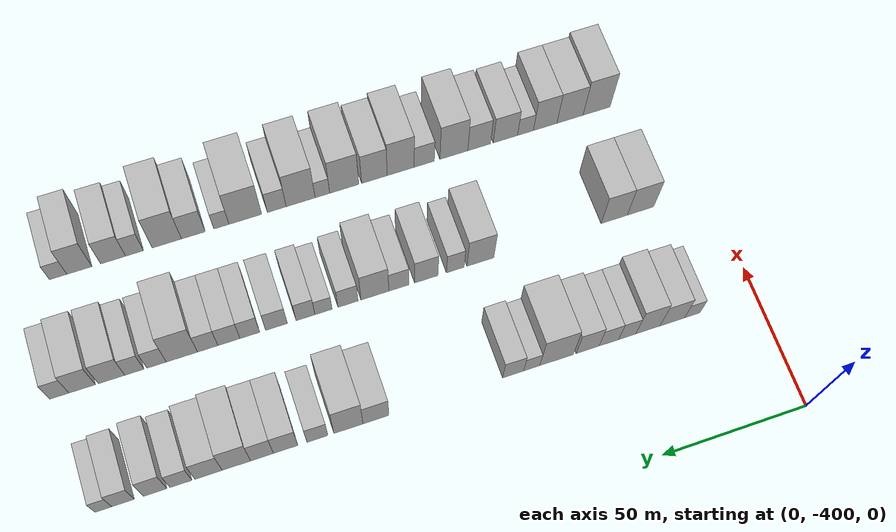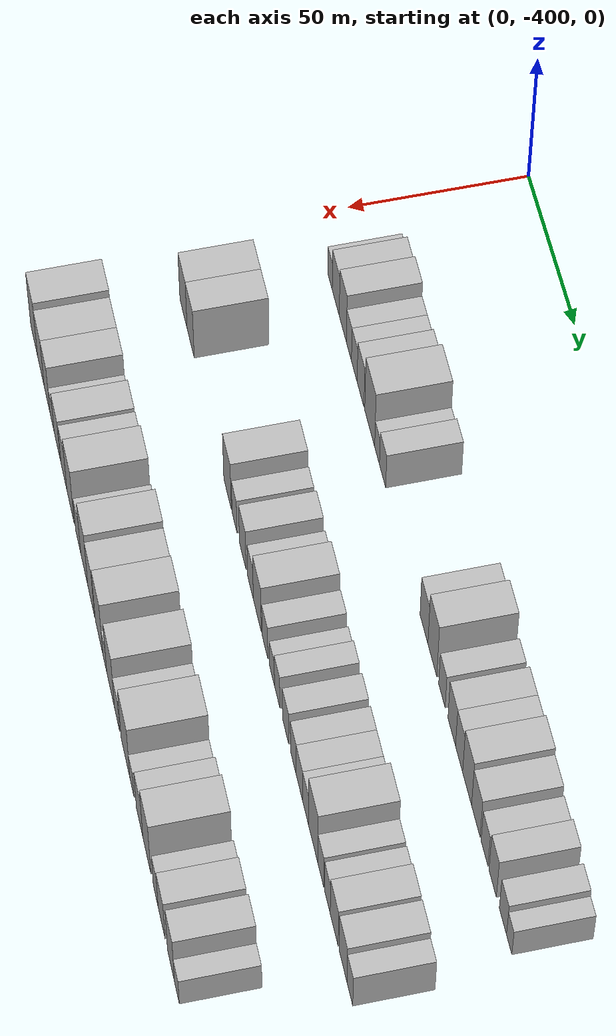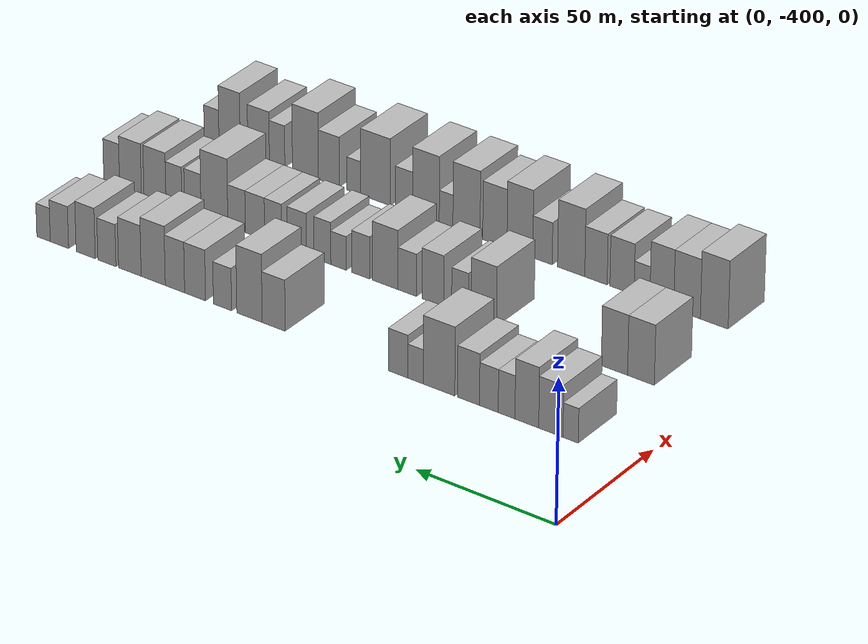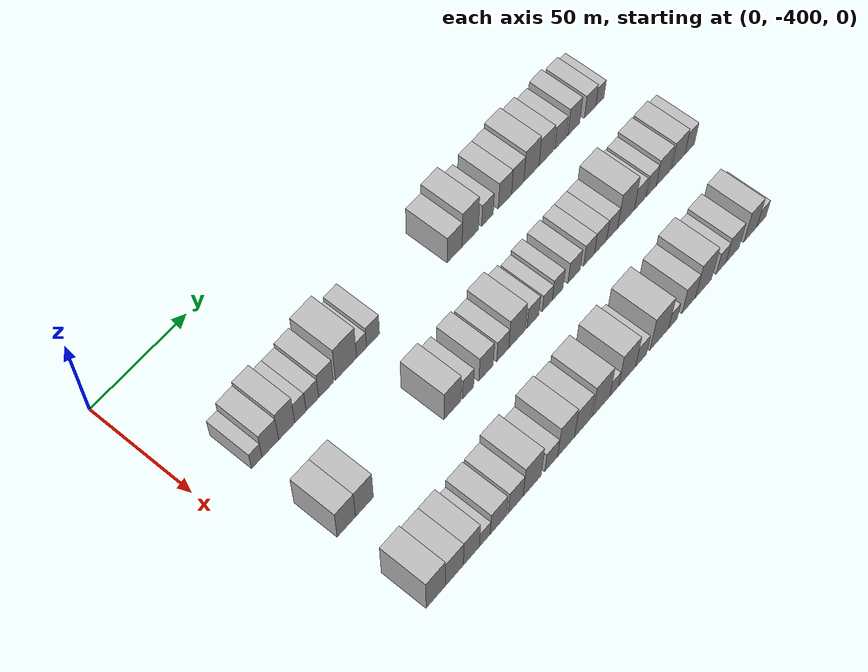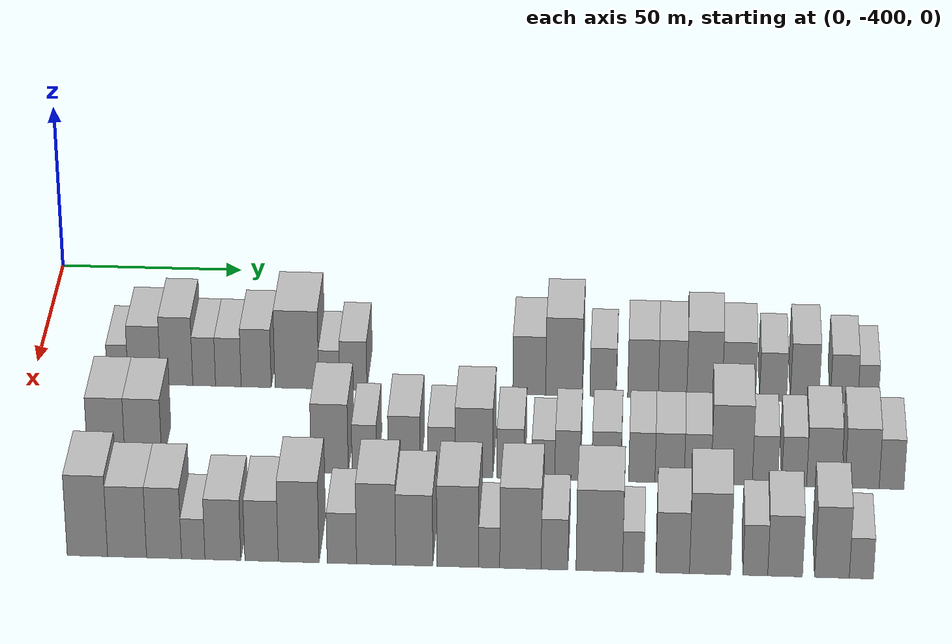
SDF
<sdf version="1.6">
 <world name="default">
  <model name="building_1">
   <static>1</static>
   <pose>50.0000 -377.2303 0 0.000000 0.000000 0.000000</pose>
   <link name="link">
    <pose>0 0 6.00 0 0 0</pose>
    <collision name="collision"><geometry><box><size>20.0000 5.5395 12.0000</size></box></geometry></collision>
    <visual name="visual">
     <cast_shadows>0</cast_shadows>
     <geometry><box><size>20.0000 5.5395 12.0000</size></box></geometry>
     <material>
      <script>
       <uri>model://HANNAS_wall/materials/scripts</uri>
       <uri>model://HANNAS_wall/materials/textures</uri>
       <name>vrc/HANNAS_wall</name>
      </script>
     </material>
    </visual>
   </link>
  </model>
  <model name="building_2">
   <static>1</static>
   <pose>50.0000 -370.1167 0 0.000000 0.000000 0.000000</pose>
   <link name="link">
    <pose>0 0 9.00 0 0 0</pose>
    <collision name="collision"><geometry><box><size>20.0000 8.6876 18.0000</size></box></geometry></collision>
    <visual name="visual">
     <cast_shadows>0</cast_shadows>
     <geometry><box><size>20.0000 8.6876 18.0000</size></box></geometry>
     <material>
      <script>
       <uri>model://HANNAS_wall/materials/scripts</uri>
       <uri>model://HANNAS_wall/materials/textures</uri>
       <name>vrc/HANNAS_wall</name>
      </script>
     </material>
    </visual>
   </link>
  </model>
  <model name="building_3">
   <static>1</static>
   <pose>50.0000 -361.4806 0 0.000000 0.000000 0.000000</pose>
   <link name="link">
    <pose>0 0 10.50 0 0 0</pose>
    <collision name="collision"><geometry><box><size>20.0000 8.5846 21.0000</size></box></geometry></collision>
    <visual name="visual">
     <cast_shadows>0</cast_shadows>
     <geometry><box><size>20.0000 8.5846 21.0000</size></box></geometry>
     <material>
      <script>
       <uri>model://HANNAS_wall/materials/scripts</uri>
       <uri>model://HANNAS_wall/materials/textures</uri>
       <name>vrc/HANNAS_wall</name>
      </script>
     </material>
    </visual>
   </link>
  </model>
  <model name="building_4">
   <static>1</static>
   <pose>50.0000 -354.1550 0 0.000000 0.000000 0.000000</pose>
   <link name="link">
    <pose>0 0 7.50 0 0 0</pose>
    <collision name="collision"><geometry><box><size>20.0000 6.0665 15.0000</size></box></geometry></collision>
    <visual name="visual">
     <cast_shadows>0</cast_shadows>
     <geometry><box><size>20.0000 6.0665 15.0000</size></box></geometry>
     <material>
      <script>
       <uri>model://HANNAS_wall/materials/scripts</uri>
       <uri>model://HANNAS_wall/materials/textures</uri>
       <name>vrc/HANNAS_wall</name>
      </script>
     </material>
    </visual>
   </link>
  </model>
  <model name="building_5">
   <static>1</static>
   <pose>50.0000 -347.7063 0 0.000000 0.000000 0.000000</pose>
   <link name="link">
    <pose>0 0 7.50 0 0 0</pose>
    <collision name="collision"><geometry><box><size>20.0000 6.8309 15.0000</size></box></geometry></collision>
    <visual name="visual">
     <cast_shadows>0</cast_shadows>
     <geometry><box><size>20.0000 6.8309 15.0000</size></box></geometry>
     <material>
      <script>
       <uri>model://HANNAS_wall/materials/scripts</uri>
       <uri>model://HANNAS_wall/materials/textures</uri>
       <name>vrc/HANNAS_wall</name>
      </script>
     </material>
    </visual>
   </link>
  </model>
  <model name="building_6">
   <static>1</static>
   <pose>50.0000 -340.2723 0 0.000000 0.000000 0.000000</pose>
   <link name="link">
    <pose>0 0 9.00 0 0 0</pose>
    <collision name="collision"><geometry><box><size>20.0000 8.0372 18.0000</size></box></geometry></collision>
    <visual name="visual">
     <cast_shadows>0</cast_shadows>
     <geometry><box><size>20.0000 8.0372 18.0000</size></box></geometry>
     <material>
      <script>
       <uri>model://HANNAS_wall/materials/scripts</uri>
       <uri>model://HANNAS_wall/materials/textures</uri>
       <name>vrc/HANNAS_wall</name>
      </script>
     </material>
    </visual>
   </link>
  </model>
  <model name="building_7">
   <static>1</static>
   <pose>50.0000 -329.4300 0 0.000000 0.000000 0.000000</pose>
   <link name="link">
    <pose>0 0 12.00 0 0 0</pose>
    <collision name="collision"><geometry><box><size>20.0000 11.6474 24.0000</size></box></geometry></collision>
    <visual name="visual">
     <cast_shadows>0</cast_shadows>
     <geometry><box><size>20.0000 11.6474 24.0000</size></box></geometry>
     <material>
      <script>
       <uri>model://HANNAS_wall/materials/scripts</uri>
       <uri>model://HANNAS_wall/materials/textures</uri>
       <name>vrc/HANNAS_wall</name>
      </script>
     </material>
    </visual>
   </link>
  </model>
  <model name="building_8">
   <static>1</static>
   <pose>50.0000 -320.8311 0 0.000000 0.000000 0.000000</pose>
   <link name="link">
    <pose>0 0 6.00 0 0 0</pose>
    <collision name="collision"><geometry><box><size>20.0000 5.5504 12.0000</size></box></geometry></collision>
    <visual name="visual">
     <cast_shadows>0</cast_shadows>
     <geometry><box><size>20.0000 5.5504 12.0000</size></box></geometry>
     <material>
      <script>
       <uri>model://HANNAS_wall/materials/scripts</uri>
       <uri>model://HANNAS_wall/materials/textures</uri>
       <name>vrc/HANNAS_wall</name>
      </script>
     </material>
    </visual>
   </link>
  </model>
  <model name="building_9">
   <static>1</static>
   <pose>50.0000 -314.4221 0 0.000000 0.000000 0.000000</pose>
   <link name="link">
    <pose>0 0 7.50 0 0 0</pose>
    <collision name="collision"><geometry><box><size>20.0000 7.2676 15.0000</size></box></geometry></collision>
    <visual name="visual">
     <cast_shadows>0</cast_shadows>
     <geometry><box><size>20.0000 7.2676 15.0000</size></box></geometry>
     <material>
      <script>
       <uri>model://HANNAS_wall/materials/scripts</uri>
       <uri>model://HANNAS_wall/materials/textures</uri>
       <name>vrc/HANNAS_wall</name>
      </script>
     </material>
    </visual>
   </link>
  </model>
  <model name="building_10">
   <static>1</static>
   <pose>50.0000 -267.6759 0 0.000000 0.000000 0.000000</pose>
   <link name="link">
    <pose>0 0 9.00 0 0 0</pose>
    <collision name="collision"><geometry><box><size>20.0000 8.7416 18.0000</size></box></geometry></collision>
    <visual name="visual">
     <cast_shadows>0</cast_shadows>
     <geometry><box><size>20.0000 8.7416 18.0000</size></box></geometry>
     <material>
      <script>
       <uri>model://HANNAS_wall/materials/scripts</uri>
       <uri>model://HANNAS_wall/materials/textures</uri>
       <name>vrc/HANNAS_wall</name>
      </script>
     </material>
    </visual>
   </link>
  </model>
  <model name="building_11">
   <static>1</static>
   <pose>50.0000 -258.4627 0 0.000000 0.000000 0.000000</pose>
   <link name="link">
    <pose>0 0 12.00 0 0 0</pose>
    <collision name="collision"><geometry><box><size>20.0000 9.6846 24.0000</size></box></geometry></collision>
    <visual name="visual">
     <cast_shadows>0</cast_shadows>
     <geometry><box><size>20.0000 9.6846 24.0000</size></box></geometry>
     <material>
      <script>
       <uri>model://HANNAS_wall/materials/scripts</uri>
       <uri>model://HANNAS_wall/materials/textures</uri>
       <name>vrc/HANNAS_wall</name>
      </script>
     </material>
    </visual>
   </link>
  </model>
  <model name="building_12">
   <static>1</static>
   <pose>50.0000 -248.1297 0 0.000000 0.000000 0.000000</pose>
   <link name="link">
    <pose>0 0 7.50 0 0 0</pose>
    <collision name="collision"><geometry><box><size>20.0000 6.9814 15.0000</size></box></geometry></collision>
    <visual name="visual">
     <cast_shadows>0</cast_shadows>
     <geometry><box><size>20.0000 6.9814 15.0000</size></box></geometry>
     <material>
      <script>
       <uri>model://HANNAS_wall/materials/scripts</uri>
       <uri>model://HANNAS_wall/materials/textures</uri>
       <name>vrc/HANNAS_wall</name>
      </script>
     </material>
    </visual>
   </link>
  </model>
  <model name="building_13">
   <static>1</static>
   <pose>50.0000 -237.5989 0 0.000000 0.000000 0.000000</pose>
   <link name="link">
    <pose>0 0 9.00 0 0 0</pose>
    <collision name="collision"><geometry><box><size>20.0000 8.0801 18.0000</size></box></geometry></collision>
    <visual name="visual">
     <cast_shadows>0</cast_shadows>
     <geometry><box><size>20.0000 8.0801 18.0000</size></box></geometry>
     <material>
      <script>
       <uri>model://HANNAS_wall/materials/scripts</uri>
       <uri>model://HANNAS_wall/materials/textures</uri>
       <name>vrc/HANNAS_wall</name>
      </script>
     </material>
    </visual>
   </link>
  </model>
  <model name="building_14">
   <static>1</static>
   <pose>50.0000 -229.7925 0 0.000000 0.000000 0.000000</pose>
   <link name="link">
    <pose>0 0 9.00 0 0 0</pose>
    <collision name="collision"><geometry><box><size>20.0000 7.5328 18.0000</size></box></geometry></collision>
    <visual name="visual">
     <cast_shadows>0</cast_shadows>
     <geometry><box><size>20.0000 7.5328 18.0000</size></box></geometry>
     <material>
      <script>
       <uri>model://HANNAS_wall/materials/scripts</uri>
       <uri>model://HANNAS_wall/materials/textures</uri>
       <name>vrc/HANNAS_wall</name>
      </script>
     </material>
    </visual>
   </link>
  </model>
  <model name="building_15">
   <static>1</static>
   <pose>50.0000 -221.3531 0 0.000000 0.000000 0.000000</pose>
   <link name="link">
    <pose>0 0 10.50 0 0 0</pose>
    <collision name="collision"><geometry><box><size>20.0000 9.3460 21.0000</size></box></geometry></collision>
    <visual name="visual">
     <cast_shadows>0</cast_shadows>
     <geometry><box><size>20.0000 9.3460 21.0000</size></box></geometry>
     <material>
      <script>
       <uri>model://HANNAS_wall/materials/scripts</uri>
       <uri>model://HANNAS_wall/materials/textures</uri>
       <name>vrc/HANNAS_wall</name>
      </script>
     </material>
    </visual>
   </link>
  </model>
  <model name="building_16">
   <static>1</static>
   <pose>50.0000 -212.2485 0 0.000000 0.000000 0.000000</pose>
   <link name="link">
    <pose>0 0 9.00 0 0 0</pose>
    <collision name="collision"><geometry><box><size>20.0000 8.8632 18.0000</size></box></geometry></collision>
    <visual name="visual">
     <cast_shadows>0</cast_shadows>
     <geometry><box><size>20.0000 8.8632 18.0000</size></box></geometry>
     <material>
      <script>
       <uri>model://HANNAS_wall/materials/scripts</uri>
       <uri>model://HANNAS_wall/materials/textures</uri>
       <name>vrc/HANNAS_wall</name>
      </script>
     </material>
    </visual>
   </link>
  </model>
  <model name="building_17">
   <static>1</static>
   <pose>50.0000 -203.2530 0 0.000000 0.000000 0.000000</pose>
   <link name="link">
    <pose>0 0 7.50 0 0 0</pose>
    <collision name="collision"><geometry><box><size>20.0000 7.1278 15.0000</size></box></geometry></collision>
    <visual name="visual">
     <cast_shadows>0</cast_shadows>
     <geometry><box><size>20.0000 7.1278 15.0000</size></box></geometry>
     <material>
      <script>
       <uri>model://HANNAS_wall/materials/scripts</uri>
       <uri>model://HANNAS_wall/materials/textures</uri>
       <name>vrc/HANNAS_wall</name>
      </script>
     </material>
    </visual>
   </link>
  </model>
  <model name="building_18">
   <static>1</static>
   <pose>50.0000 -194.9167 0 0.000000 0.000000 0.000000</pose>
   <link name="link">
    <pose>0 0 9.00 0 0 0</pose>
    <collision name="collision"><geometry><box><size>20.0000 7.5448 18.0000</size></box></geometry></collision>
    <visual name="visual">
     <cast_shadows>0</cast_shadows>
     <geometry><box><size>20.0000 7.5448 18.0000</size></box></geometry>
     <material>
      <script>
       <uri>model://HANNAS_wall/materials/scripts</uri>
       <uri>model://HANNAS_wall/materials/textures</uri>
       <name>vrc/HANNAS_wall</name>
      </script>
     </material>
    </visual>
   </link>
  </model>
  <model name="building_19">
   <static>1</static>
   <pose>50.0000 -184.5215 0 0.000000 0.000000 0.000000</pose>
   <link name="link">
    <pose>0 0 7.50 0 0 0</pose>
    <collision name="collision"><geometry><box><size>20.0000 7.2455 15.0000</size></box></geometry></collision>
    <visual name="visual">
     <cast_shadows>0</cast_shadows>
     <geometry><box><size>20.0000 7.2455 15.0000</size></box></geometry>
     <material>
      <script>
       <uri>model://HANNAS_wall/materials/scripts</uri>
       <uri>model://HANNAS_wall/materials/textures</uri>
       <name>vrc/HANNAS_wall</name>
      </script>
     </material>
    </visual>
   </link>
  </model>
  <model name="building_20">
   <static>1</static>
   <pose>50.0000 -178.2118 0 0.000000 0.000000 0.000000</pose>
   <link name="link">
    <pose>0 0 6.00 0 0 0</pose>
    <collision name="collision"><geometry><box><size>20.0000 5.3739 12.0000</size></box></geometry></collision>
    <visual name="visual">
     <cast_shadows>0</cast_shadows>
     <geometry><box><size>20.0000 5.3739 12.0000</size></box></geometry>
     <material>
      <script>
       <uri>model://HANNAS_wall/materials/scripts</uri>
       <uri>model://HANNAS_wall/materials/textures</uri>
       <name>vrc/HANNAS_wall</name>
      </script>
     </material>
    </visual>
   </link>
  </model>
  <model name="building_79">
   <static>1</static>
   <pose>90.0000 -375.1652 0 0.000000 0.000000 0.000000</pose>
   <link name="link">
    <pose>0 0 10.50 0 0 0</pose>
    <collision name="collision"><geometry><box><size>20.0000 9.6697 21.0000</size></box></geometry></collision>
    <visual name="visual">
     <cast_shadows>0</cast_shadows>
     <geometry><box><size>20.0000 9.6697 21.0000</size></box></geometry>
     <material>
      <script>
       <uri>model://HANNAS_wall/materials/scripts</uri>
       <uri>model://HANNAS_wall/materials/textures</uri>
       <name>vrc/HANNAS_wall</name>
      </script>
     </material>
    </visual>
   </link>
  </model>
  <model name="building_80">
   <static>1</static>
   <pose>90.0000 -365.5708 0 0.000000 0.000000 0.000000</pose>
   <link name="link">
    <pose>0 0 10.50 0 0 0</pose>
    <collision name="collision"><geometry><box><size>20.0000 9.5191 21.0000</size></box></geometry></collision>
    <visual name="visual">
     <cast_shadows>0</cast_shadows>
     <geometry><box><size>20.0000 9.5191 21.0000</size></box></geometry>
     <material>
      <script>
       <uri>model://HANNAS_wall/materials/scripts</uri>
       <uri>model://HANNAS_wall/materials/textures</uri>
       <name>vrc/HANNAS_wall</name>
      </script>
     </material>
    </visual>
   </link>
  </model>
  <model name="building_81">
   <static>1</static>
   <pose>90.0000 -317.5282 0 0.000000 0.000000 0.000000</pose>
   <link name="link">
    <pose>0 0 10.50 0 0 0</pose>
    <collision name="collision"><geometry><box><size>20.0000 9.5220 21.0000</size></box></geometry></collision>
    <visual name="visual">
     <cast_shadows>0</cast_shadows>
     <geometry><box><size>20.0000 9.5220 21.0000</size></box></geometry>
     <material>
      <script>
       <uri>model://HANNAS_wall/materials/scripts</uri>
       <uri>model://HANNAS_wall/materials/textures</uri>
       <name>vrc/HANNAS_wall</name>
      </script>
     </material>
    </visual>
   </link>
  </model>
  <model name="building_82">
   <static>1</static>
   <pose>90.0000 -308.6237 0 0.000000 0.000000 0.000000</pose>
   <link name="link">
    <pose>0 0 7.50 0 0 0</pose>
    <collision name="collision"><geometry><box><size>20.0000 6.2872 15.0000</size></box></geometry></collision>
    <visual name="visual">
     <cast_shadows>0</cast_shadows>
     <geometry><box><size>20.0000 6.2872 15.0000</size></box></geometry>
     <material>
      <script>
       <uri>model://HANNAS_wall/materials/scripts</uri>
       <uri>model://HANNAS_wall/materials/textures</uri>
       <name>vrc/HANNAS_wall</name>
      </script>
     </material>
    </visual>
   </link>
  </model>
  <model name="building_83">
   <static>1</static>
   <pose>90.0000 -298.3840 0 0.000000 0.000000 0.000000</pose>
   <link name="link">
    <pose>0 0 9.00 0 0 0</pose>
    <collision name="collision"><geometry><box><size>20.0000 8.1922 18.0000</size></box></geometry></collision>
    <visual name="visual">
     <cast_shadows>0</cast_shadows>
     <geometry><box><size>20.0000 8.1922 18.0000</size></box></geometry>
     <material>
      <script>
       <uri>model://HANNAS_wall/materials/scripts</uri>
       <uri>model://HANNAS_wall/materials/textures</uri>
       <name>vrc/HANNAS_wall</name>
      </script>
     </material>
    </visual>
   </link>
  </model>
  <model name="building_84">
   <static>1</static>
   <pose>90.0000 -288.7840 0 0.000000 0.000000 0.000000</pose>
   <link name="link">
    <pose>0 0 7.50 0 0 0</pose>
    <collision name="collision"><geometry><box><size>20.0000 7.0077 15.0000</size></box></geometry></collision>
    <visual name="visual">
     <cast_shadows>0</cast_shadows>
     <geometry><box><size>20.0000 7.0077 15.0000</size></box></geometry>
     <material>
      <script>
       <uri>model://HANNAS_wall/materials/scripts</uri>
       <uri>model://HANNAS_wall/materials/textures</uri>
       <name>vrc/HANNAS_wall</name>
      </script>
     </material>
    </visual>
   </link>
  </model>
  <model name="building_85">
   <static>1</static>
   <pose>90.0000 -280.4297 0 0.000000 0.000000 0.000000</pose>
   <link name="link">
    <pose>0 0 10.50 0 0 0</pose>
    <collision name="collision"><geometry><box><size>20.0000 9.7008 21.0000</size></box></geometry></collision>
    <visual name="visual">
     <cast_shadows>0</cast_shadows>
     <geometry><box><size>20.0000 9.7008 21.0000</size></box></geometry>
     <material>
      <script>
       <uri>model://HANNAS_wall/materials/scripts</uri>
       <uri>model://HANNAS_wall/materials/textures</uri>
       <name>vrc/HANNAS_wall</name>
      </script>
     </material>
    </visual>
   </link>
  </model>
  <model name="building_86">
   <static>1</static>
   <pose>90.0000 -271.0940 0 0.000000 0.000000 0.000000</pose>
   <link name="link">
    <pose>0 0 7.50 0 0 0</pose>
    <collision name="collision"><geometry><box><size>20.0000 6.9707 15.0000</size></box></geometry></collision>
    <visual name="visual">
     <cast_shadows>0</cast_shadows>
     <geometry><box><size>20.0000 6.9707 15.0000</size></box></geometry>
     <material>
      <script>
       <uri>model://HANNAS_wall/materials/scripts</uri>
       <uri>model://HANNAS_wall/materials/textures</uri>
       <name>vrc/HANNAS_wall</name>
      </script>
     </material>
    </visual>
   </link>
  </model>
  <model name="building_87">
   <static>1</static>
   <pose>90.0000 -262.6356 0 0.000000 0.000000 0.000000</pose>
   <link name="link">
    <pose>0 0 6.00 0 0 0</pose>
    <collision name="collision"><geometry><box><size>20.0000 5.9460 12.0000</size></box></geometry></collision>
    <visual name="visual">
     <cast_shadows>0</cast_shadows>
     <geometry><box><size>20.0000 5.9460 12.0000</size></box></geometry>
     <material>
      <script>
       <uri>model://HANNAS_wall/materials/scripts</uri>
       <uri>model://HANNAS_wall/materials/textures</uri>
       <name>vrc/HANNAS_wall</name>
      </script>
     </material>
    </visual>
   </link>
  </model>
  <model name="building_88">
   <static>1</static>
   <pose>90.0000 -256.4345 0 0.000000 0.000000 0.000000</pose>
   <link name="link">
    <pose>0 0 7.50 0 0 0</pose>
    <collision name="collision"><geometry><box><size>20.0000 6.4562 15.0000</size></box></geometry></collision>
    <visual name="visual">
     <cast_shadows>0</cast_shadows>
     <geometry><box><size>20.0000 6.4562 15.0000</size></box></geometry>
     <material>
      <script>
       <uri>model://HANNAS_wall/materials/scripts</uri>
       <uri>model://HANNAS_wall/materials/textures</uri>
       <name>vrc/HANNAS_wall</name>
      </script>
     </material>
    </visual>
   </link>
  </model>
  <model name="building_89">
   <static>1</static>
   <pose>90.0000 -246.4819 0 0.000000 0.000000 0.000000</pose>
   <link name="link">
    <pose>0 0 7.50 0 0 0</pose>
    <collision name="collision"><geometry><box><size>20.0000 7.4492 15.0000</size></box></geometry></collision>
    <visual name="visual">
     <cast_shadows>0</cast_shadows>
     <geometry><box><size>20.0000 7.4492 15.0000</size></box></geometry>
     <material>
      <script>
       <uri>model://HANNAS_wall/materials/scripts</uri>
       <uri>model://HANNAS_wall/materials/textures</uri>
       <name>vrc/HANNAS_wall</name>
      </script>
     </material>
    </visual>
   </link>
  </model>
  <model name="building_90">
   <static>1</static>
   <pose>90.0000 -237.4047 0 0.000000 0.000000 0.000000</pose>
   <link name="link">
    <pose>0 0 7.50 0 0 0</pose>
    <collision name="collision"><geometry><box><size>20.0000 6.7051 15.0000</size></box></geometry></collision>
    <visual name="visual">
     <cast_shadows>0</cast_shadows>
     <geometry><box><size>20.0000 6.7051 15.0000</size></box></geometry>
     <material>
      <script>
       <uri>model://HANNAS_wall/materials/scripts</uri>
       <uri>model://HANNAS_wall/materials/textures</uri>
       <name>vrc/HANNAS_wall</name>
      </script>
     </material>
    </visual>
   </link>
  </model>
  <model name="building_91">
   <static>1</static>
   <pose>90.0000 -230.3034 0 0.000000 0.000000 0.000000</pose>
   <link name="link">
    <pose>0 0 7.50 0 0 0</pose>
    <collision name="collision"><geometry><box><size>20.0000 7.4975 15.0000</size></box></geometry></collision>
    <visual name="visual">
     <cast_shadows>0</cast_shadows>
     <geometry><box><size>20.0000 7.4975 15.0000</size></box></geometry>
     <material>
      <script>
       <uri>model://HANNAS_wall/materials/scripts</uri>
       <uri>model://HANNAS_wall/materials/textures</uri>
       <name>vrc/HANNAS_wall</name>
      </script>
     </material>
    </visual>
   </link>
  </model>
  <model name="building_92">
   <static>1</static>
   <pose>90.0000 -223.1185 0 0.000000 0.000000 0.000000</pose>
   <link name="link">
    <pose>0 0 7.50 0 0 0</pose>
    <collision name="collision"><geometry><box><size>20.0000 6.8724 15.0000</size></box></geometry></collision>
    <visual name="visual">
     <cast_shadows>0</cast_shadows>
     <geometry><box><size>20.0000 6.8724 15.0000</size></box></geometry>
     <material>
      <script>
       <uri>model://HANNAS_wall/materials/scripts</uri>
       <uri>model://HANNAS_wall/materials/textures</uri>
       <name>vrc/HANNAS_wall</name>
      </script>
     </material>
    </visual>
   </link>
  </model>
  <model name="building_93">
   <static>1</static>
   <pose>90.0000 -214.4165 0 0.000000 0.000000 0.000000</pose>
   <link name="link">
    <pose>0 0 12.00 0 0 0</pose>
    <collision name="collision"><geometry><box><size>20.0000 10.5315 24.0000</size></box></geometry></collision>
    <visual name="visual">
     <cast_shadows>0</cast_shadows>
     <geometry><box><size>20.0000 10.5315 24.0000</size></box></geometry>
     <material>
      <script>
       <uri>model://HANNAS_wall/materials/scripts</uri>
       <uri>model://HANNAS_wall/materials/textures</uri>
       <name>vrc/HANNAS_wall</name>
      </script>
     </material>
    </visual>
   </link>
  </model>
  <model name="building_94">
   <static>1</static>
   <pose>90.0000 -205.8955 0 0.000000 0.000000 0.000000</pose>
   <link name="link">
    <pose>0 0 7.50 0 0 0</pose>
    <collision name="collision"><geometry><box><size>20.0000 6.5105 15.0000</size></box></geometry></collision>
    <visual name="visual">
     <cast_shadows>0</cast_shadows>
     <geometry><box><size>20.0000 6.5105 15.0000</size></box></geometry>
     <material>
      <script>
       <uri>model://HANNAS_wall/materials/scripts</uri>
       <uri>model://HANNAS_wall/materials/textures</uri>
       <name>vrc/HANNAS_wall</name>
      </script>
     </material>
    </visual>
   </link>
  </model>
  <model name="building_95">
   <static>1</static>
   <pose>90.0000 -198.4619 0 0.000000 0.000000 0.000000</pose>
   <link name="link">
    <pose>0 0 7.50 0 0 0</pose>
    <collision name="collision"><geometry><box><size>20.0000 6.3567 15.0000</size></box></geometry></collision>
    <visual name="visual">
     <cast_shadows>0</cast_shadows>
     <geometry><box><size>20.0000 6.3567 15.0000</size></box></geometry>
     <material>
      <script>
       <uri>model://HANNAS_wall/materials/scripts</uri>
       <uri>model://HANNAS_wall/materials/textures</uri>
       <name>vrc/HANNAS_wall</name>
      </script>
     </material>
    </visual>
   </link>
  </model>
  <model name="building_96">
   <static>1</static>
   <pose>90.0000 -190.8978 0 0.000000 0.000000 0.000000</pose>
   <link name="link">
    <pose>0 0 9.00 0 0 0</pose>
    <collision name="collision"><geometry><box><size>20.0000 8.7715 18.0000</size></box></geometry></collision>
    <visual name="visual">
     <cast_shadows>0</cast_shadows>
     <geometry><box><size>20.0000 8.7715 18.0000</size></box></geometry>
     <material>
      <script>
       <uri>model://HANNAS_wall/materials/scripts</uri>
       <uri>model://HANNAS_wall/materials/textures</uri>
       <name>vrc/HANNAS_wall</name>
      </script>
     </material>
    </visual>
   </link>
  </model>
  <model name="building_97">
   <static>1</static>
   <pose>90.0000 -181.1439 0 0.000000 0.000000 0.000000</pose>
   <link name="link">
    <pose>0 0 9.00 0 0 0</pose>
    <collision name="collision"><geometry><box><size>20.0000 8.7362 18.0000</size></box></geometry></collision>
    <visual name="visual">
     <cast_shadows>0</cast_shadows>
     <geometry><box><size>20.0000 8.7362 18.0000</size></box></geometry>
     <material>
      <script>
       <uri>model://HANNAS_wall/materials/scripts</uri>
       <uri>model://HANNAS_wall/materials/textures</uri>
       <name>vrc/HANNAS_wall</name>
      </script>
     </material>
    </visual>
   </link>
  </model>
  <model name="building_98">
   <static>1</static>
   <pose>90.0000 -173.6215 0 0.000000 0.000000 0.000000</pose>
   <link name="link">
    <pose>0 0 7.50 0 0 0</pose>
    <collision name="collision"><geometry><box><size>20.0000 6.3087 15.0000</size></box></geometry></collision>
    <visual name="visual">
     <cast_shadows>0</cast_shadows>
     <geometry><box><size>20.0000 6.3087 15.0000</size></box></geometry>
     <material>
      <script>
       <uri>model://HANNAS_wall/materials/scripts</uri>
       <uri>model://HANNAS_wall/materials/textures</uri>
       <name>vrc/HANNAS_wall</name>
      </script>
     </material>
    </visual>
   </link>
  </model>
  <model name="building_159">
   <static>1</static>
   <pose>130.0000 -374.9389 0 0.000000 0.000000 0.000000</pose>
   <link name="link">
    <pose>0 0 12.00 0 0 0</pose>
    <collision name="collision"><geometry><box><size>20.0000 10.1222 24.0000</size></box></geometry></collision>
    <visual name="visual">
     <cast_shadows>0</cast_shadows>
     <geometry><box><size>20.0000 10.1222 24.0000</size></box></geometry>
     <material>
      <script>
       <uri>model://HANNAS_wall/materials/scripts</uri>
       <uri>model://HANNAS_wall/materials/textures</uri>
       <name>vrc/HANNAS_wall</name>
      </script>
     </material>
    </visual>
   </link>
  </model>
  <model name="building_160">
   <static>1</static>
   <pose>130.0000 -365.0108 0 0.000000 0.000000 0.000000</pose>
   <link name="link">
    <pose>0 0 10.50 0 0 0</pose>
    <collision name="collision"><geometry><box><size>20.0000 9.7339 21.0000</size></box></geometry></collision>
    <visual name="visual">
     <cast_shadows>0</cast_shadows>
     <geometry><box><size>20.0000 9.7339 21.0000</size></box></geometry>
     <material>
      <script>
       <uri>model://HANNAS_wall/materials/scripts</uri>
       <uri>model://HANNAS_wall/materials/textures</uri>
       <name>vrc/HANNAS_wall</name>
      </script>
     </material>
    </visual>
   </link>
  </model>
  <model name="building_161">
   <static>1</static>
   <pose>130.0000 -355.7655 0 0.000000 0.000000 0.000000</pose>
   <link name="link">
    <pose>0 0 10.50 0 0 0</pose>
    <collision name="collision"><geometry><box><size>20.0000 8.7567 21.0000</size></box></geometry></collision>
    <visual name="visual">
     <cast_shadows>0</cast_shadows>
     <geometry><box><size>20.0000 8.7567 21.0000</size></box></geometry>
     <material>
      <script>
       <uri>model://HANNAS_wall/materials/scripts</uri>
       <uri>model://HANNAS_wall/materials/textures</uri>
       <name>vrc/HANNAS_wall</name>
      </script>
     </material>
    </visual>
   </link>
  </model>
  <model name="building_162">
   <static>1</static>
   <pose>130.0000 -348.4576 0 0.000000 0.000000 0.000000</pose>
   <link name="link">
    <pose>0 0 6.00 0 0 0</pose>
    <collision name="collision"><geometry><box><size>20.0000 5.8590 12.0000</size></box></geometry></collision>
    <visual name="visual">
     <cast_shadows>0</cast_shadows>
     <geometry><box><size>20.0000 5.8590 12.0000</size></box></geometry>
     <material>
      <script>
       <uri>model://HANNAS_wall/materials/scripts</uri>
       <uri>model://HANNAS_wall/materials/textures</uri>
       <name>vrc/HANNAS_wall</name>
      </script>
     </material>
    </visual>
   </link>
  </model>
  <model name="building_163">
   <static>1</static>
   <pose>130.0000 -341.0504 0 0.000000 0.000000 0.000000</pose>
   <link name="link">
    <pose>0 0 9.00 0 0 0</pose>
    <collision name="collision"><geometry><box><size>20.0000 8.9554 18.0000</size></box></geometry></collision>
    <visual name="visual">
     <cast_shadows>0</cast_shadows>
     <geometry><box><size>20.0000 8.9554 18.0000</size></box></geometry>
     <material>
      <script>
       <uri>model://HANNAS_wall/materials/scripts</uri>
       <uri>model://HANNAS_wall/materials/textures</uri>
       <name>vrc/HANNAS_wall</name>
      </script>
     </material>
    </visual>
   </link>
  </model>
  <model name="building_164">
   <static>1</static>
   <pose>130.0000 -331.3988 0 0.000000 0.000000 0.000000</pose>
   <link name="link">
    <pose>0 0 9.00 0 0 0</pose>
    <collision name="collision"><geometry><box><size>20.0000 8.3478 18.0000</size></box></geometry></collision>
    <visual name="visual">
     <cast_shadows>0</cast_shadows>
     <geometry><box><size>20.0000 8.3478 18.0000</size></box></geometry>
     <material>
      <script>
       <uri>model://HANNAS_wall/materials/scripts</uri>
       <uri>model://HANNAS_wall/materials/textures</uri>
       <name>vrc/HANNAS_wall</name>
      </script>
     </material>
    </visual>
   </link>
  </model>
  <model name="building_165">
   <static>1</static>
   <pose>130.0000 -322.1308 0 0.000000 0.000000 0.000000</pose>
   <link name="link">
    <pose>0 0 12.00 0 0 0</pose>
    <collision name="collision"><geometry><box><size>20.0000 10.1881 24.0000</size></box></geometry></collision>
    <visual name="visual">
     <cast_shadows>0</cast_shadows>
     <geometry><box><size>20.0000 10.1881 24.0000</size></box></geometry>
     <material>
      <script>
       <uri>model://HANNAS_wall/materials/scripts</uri>
       <uri>model://HANNAS_wall/materials/textures</uri>
       <name>vrc/HANNAS_wall</name>
      </script>
     </material>
    </visual>
   </link>
  </model>
  <model name="building_166">
   <static>1</static>
   <pose>130.0000 -311.3812 0 0.000000 0.000000 0.000000</pose>
   <link name="link">
    <pose>0 0 7.50 0 0 0</pose>
    <collision name="collision"><geometry><box><size>20.0000 7.3112 15.0000</size></box></geometry></collision>
    <visual name="visual">
     <cast_shadows>0</cast_shadows>
     <geometry><box><size>20.0000 7.3112 15.0000</size></box></geometry>
     <material>
      <script>
       <uri>model://HANNAS_wall/materials/scripts</uri>
       <uri>model://HANNAS_wall/materials/textures</uri>
       <name>vrc/HANNAS_wall</name>
      </script>
     </material>
    </visual>
   </link>
  </model>
  <model name="building_167">
   <static>1</static>
   <pose>130.0000 -302.8460 0 0.000000 0.000000 0.000000</pose>
   <link name="link">
    <pose>0 0 12.00 0 0 0</pose>
    <collision name="collision"><geometry><box><size>20.0000 9.7593 24.0000</size></box></geometry></collision>
    <visual name="visual">
     <cast_shadows>0</cast_shadows>
     <geometry><box><size>20.0000 9.7593 24.0000</size></box></geometry>
     <material>
      <script>
       <uri>model://HANNAS_wall/materials/scripts</uri>
       <uri>model://HANNAS_wall/materials/textures</uri>
       <name>vrc/HANNAS_wall</name>
      </script>
     </material>
    </visual>
   </link>
  </model>
  <model name="building_168">
   <static>1</static>
   <pose>130.0000 -293.3575 0 0.000000 0.000000 0.000000</pose>
   <link name="link">
    <pose>0 0 10.50 0 0 0</pose>
    <collision name="collision"><geometry><box><size>20.0000 9.2177 21.0000</size></box></geometry></collision>
    <visual name="visual">
     <cast_shadows>0</cast_shadows>
     <geometry><box><size>20.0000 9.2177 21.0000</size></box></geometry>
     <material>
      <script>
       <uri>model://HANNAS_wall/materials/scripts</uri>
       <uri>model://HANNAS_wall/materials/textures</uri>
       <name>vrc/HANNAS_wall</name>
      </script>
     </material>
    </visual>
   </link>
  </model>
  <model name="building_169">
   <static>1</static>
   <pose>130.0000 -282.5493 0 0.000000 0.000000 0.000000</pose>
   <link name="link">
    <pose>0 0 12.00 0 0 0</pose>
    <collision name="collision"><geometry><box><size>20.0000 10.3986 24.0000</size></box></geometry></collision>
    <visual name="visual">
     <cast_shadows>0</cast_shadows>
     <geometry><box><size>20.0000 10.3986 24.0000</size></box></geometry>
     <material>
      <script>
       <uri>model://HANNAS_wall/materials/scripts</uri>
       <uri>model://HANNAS_wall/materials/textures</uri>
       <name>vrc/HANNAS_wall</name>
      </script>
     </material>
    </visual>
   </link>
  </model>
  <model name="building_170">
   <static>1</static>
   <pose>130.0000 -274.7275 0 0.000000 0.000000 0.000000</pose>
   <link name="link">
    <pose>0 0 6.00 0 0 0</pose>
    <collision name="collision"><geometry><box><size>20.0000 5.2450 12.0000</size></box></geometry></collision>
    <visual name="visual">
     <cast_shadows>0</cast_shadows>
     <geometry><box><size>20.0000 5.2450 12.0000</size></box></geometry>
     <material>
      <script>
       <uri>model://HANNAS_wall/materials/scripts</uri>
       <uri>model://HANNAS_wall/materials/textures</uri>
       <name>vrc/HANNAS_wall</name>
      </script>
     </material>
    </visual>
   </link>
  </model>
  <model name="building_171">
   <static>1</static>
   <pose>130.0000 -266.9721 0 0.000000 0.000000 0.000000</pose>
   <link name="link">
    <pose>0 0 12.00 0 0 0</pose>
    <collision name="collision"><geometry><box><size>20.0000 10.2659 24.0000</size></box></geometry></collision>
    <visual name="visual">
     <cast_shadows>0</cast_shadows>
     <geometry><box><size>20.0000 10.2659 24.0000</size></box></geometry>
     <material>
      <script>
       <uri>model://HANNAS_wall/materials/scripts</uri>
       <uri>model://HANNAS_wall/materials/textures</uri>
       <name>vrc/HANNAS_wall</name>
      </script>
     </material>
    </visual>
   </link>
  </model>
  <model name="building_172">
   <static>1</static>
   <pose>130.0000 -258.5108 0 0.000000 0.000000 0.000000</pose>
   <link name="link">
    <pose>0 0 7.50 0 0 0</pose>
    <collision name="collision"><geometry><box><size>20.0000 6.6566 15.0000</size></box></geometry></collision>
    <visual name="visual">
     <cast_shadows>0</cast_shadows>
     <geometry><box><size>20.0000 6.6566 15.0000</size></box></geometry>
     <material>
      <script>
       <uri>model://HANNAS_wall/materials/scripts</uri>
       <uri>model://HANNAS_wall/materials/textures</uri>
       <name>vrc/HANNAS_wall</name>
      </script>
     </material>
    </visual>
   </link>
  </model>
  <model name="building_173">
   <static>1</static>
   <pose>130.0000 -247.4232 0 0.000000 0.000000 0.000000</pose>
   <link name="link">
    <pose>0 0 12.00 0 0 0</pose>
    <collision name="collision"><geometry><box><size>20.0000 11.5187 24.0000</size></box></geometry></collision>
    <visual name="visual">
     <cast_shadows>0</cast_shadows>
     <geometry><box><size>20.0000 11.5187 24.0000</size></box></geometry>
     <material>
      <script>
       <uri>model://HANNAS_wall/materials/scripts</uri>
       <uri>model://HANNAS_wall/materials/textures</uri>
       <name>vrc/HANNAS_wall</name>
      </script>
     </material>
    </visual>
   </link>
  </model>
  <model name="building_174">
   <static>1</static>
   <pose>130.0000 -239.0203 0 0.000000 0.000000 0.000000</pose>
   <link name="link">
    <pose>0 0 6.00 0 0 0</pose>
    <collision name="collision"><geometry><box><size>20.0000 5.2869 12.0000</size></box></geometry></collision>
    <visual name="visual">
     <cast_shadows>0</cast_shadows>
     <geometry><box><size>20.0000 5.2869 12.0000</size></box></geometry>
     <material>
      <script>
       <uri>model://HANNAS_wall/materials/scripts</uri>
       <uri>model://HANNAS_wall/materials/textures</uri>
       <name>vrc/HANNAS_wall</name>
      </script>
     </material>
    </visual>
   </link>
  </model>
  <model name="building_175">
   <static>1</static>
   <pose>130.0000 -229.2282 0 0.000000 0.000000 0.000000</pose>
   <link name="link">
    <pose>0 0 9.00 0 0 0</pose>
    <collision name="collision"><geometry><box><size>20.0000 8.2972 18.0000</size></box></geometry></collision>
    <visual name="visual">
     <cast_shadows>0</cast_shadows>
     <geometry><box><size>20.0000 8.2972 18.0000</size></box></geometry>
     <material>
      <script>
       <uri>model://HANNAS_wall/materials/scripts</uri>
       <uri>model://HANNAS_wall/materials/textures</uri>
       <name>vrc/HANNAS_wall</name>
      </script>
     </material>
    </visual>
   </link>
  </model>
  <model name="building_176">
   <static>1</static>
   <pose>130.0000 -219.9899 0 0.000000 0.000000 0.000000</pose>
   <link name="link">
    <pose>0 0 12.00 0 0 0</pose>
    <collision name="collision"><geometry><box><size>20.0000 10.1795 24.0000</size></box></geometry></collision>
    <visual name="visual">
     <cast_shadows>0</cast_shadows>
     <geometry><box><size>20.0000 10.1795 24.0000</size></box></geometry>
     <material>
      <script>
       <uri>model://HANNAS_wall/materials/scripts</uri>
       <uri>model://HANNAS_wall/materials/textures</uri>
       <name>vrc/HANNAS_wall</name>
      </script>
     </material>
    </visual>
   </link>
  </model>
  <model name="building_177">
   <static>1</static>
   <pose>130.0000 -208.8232 0 0.000000 0.000000 0.000000</pose>
   <link name="link">
    <pose>0 0 7.50 0 0 0</pose>
    <collision name="collision"><geometry><box><size>20.0000 6.1538 15.0000</size></box></geometry></collision>
    <visual name="visual">
     <cast_shadows>0</cast_shadows>
     <geometry><box><size>20.0000 6.1538 15.0000</size></box></geometry>
     <material>
      <script>
       <uri>model://HANNAS_wall/materials/scripts</uri>
       <uri>model://HANNAS_wall/materials/textures</uri>
       <name>vrc/HANNAS_wall</name>
      </script>
     </material>
    </visual>
   </link>
  </model>
  <model name="building_178">
   <static>1</static>
   <pose>130.0000 -201.4568 0 0.000000 0.000000 0.000000</pose>
   <link name="link">
    <pose>0 0 9.00 0 0 0</pose>
    <collision name="collision"><geometry><box><size>20.0000 8.5791 18.0000</size></box></geometry></collision>
    <visual name="visual">
     <cast_shadows>0</cast_shadows>
     <geometry><box><size>20.0000 8.5791 18.0000</size></box></geometry>
     <material>
      <script>
       <uri>model://HANNAS_wall/materials/scripts</uri>
       <uri>model://HANNAS_wall/materials/textures</uri>
       <name>vrc/HANNAS_wall</name>
      </script>
     </material>
    </visual>
   </link>
  </model>
  <model name="building_179">
   <static>1</static>
   <pose>130.0000 -189.8903 0 0.000000 0.000000 0.000000</pose>
   <link name="link">
    <pose>0 0 10.50 0 0 0</pose>
    <collision name="collision"><geometry><box><size>20.0000 8.5537 21.0000</size></box></geometry></collision>
    <visual name="visual">
     <cast_shadows>0</cast_shadows>
     <geometry><box><size>20.0000 8.5537 21.0000</size></box></geometry>
     <material>
      <script>
       <uri>model://HANNAS_wall/materials/scripts</uri>
       <uri>model://HANNAS_wall/materials/textures</uri>
       <name>vrc/HANNAS_wall</name>
      </script>
     </material>
    </visual>
   </link>
  </model>
  <model name="building_180">
   <static>1</static>
   <pose>130.0000 -182.6512 0 0.000000 0.000000 0.000000</pose>
   <link name="link">
    <pose>0 0 6.00 0 0 0</pose>
    <collision name="collision"><geometry><box><size>20.0000 5.9244 12.0000</size></box></geometry></collision>
    <visual name="visual">
     <cast_shadows>0</cast_shadows>
     <geometry><box><size>20.0000 5.9244 12.0000</size></box></geometry>
     <material>
      <script>
       <uri>model://HANNAS_wall/materials/scripts</uri>
       <uri>model://HANNAS_wall/materials/textures</uri>
       <name>vrc/HANNAS_wall</name>
      </script>
     </material>
    </visual>
   </link>
  </model>
 </world>
</sdf>
